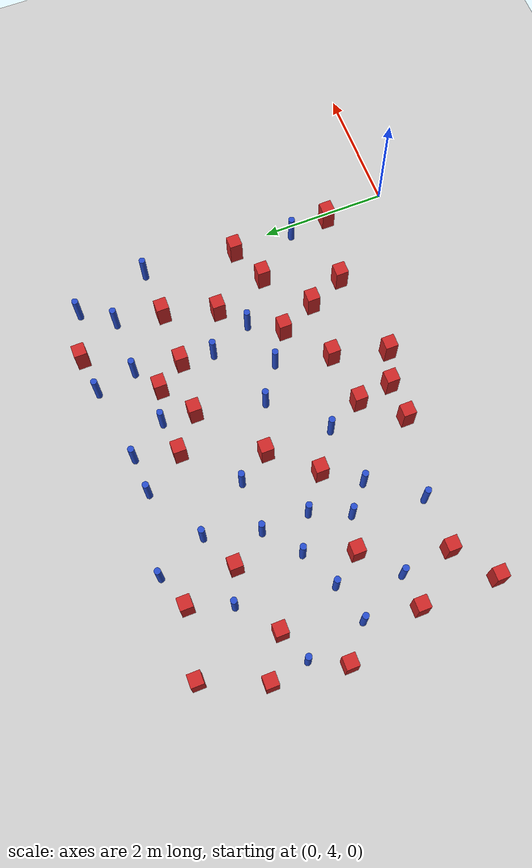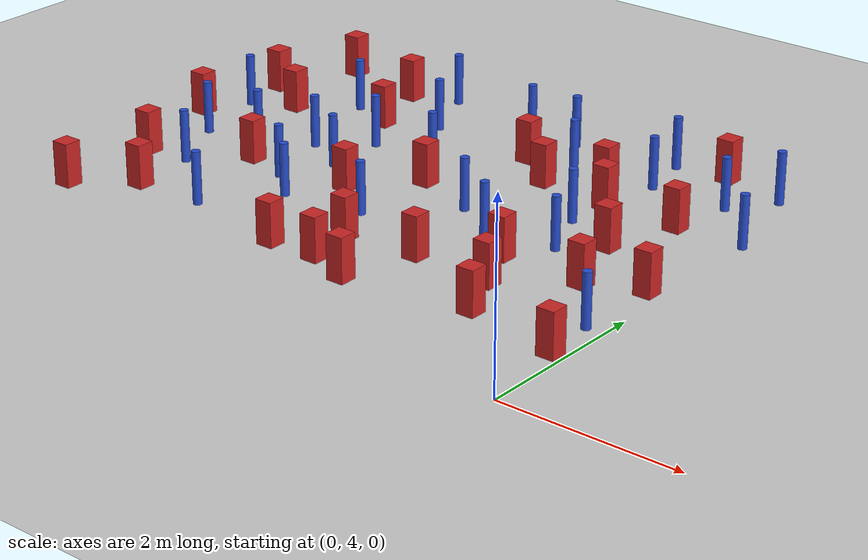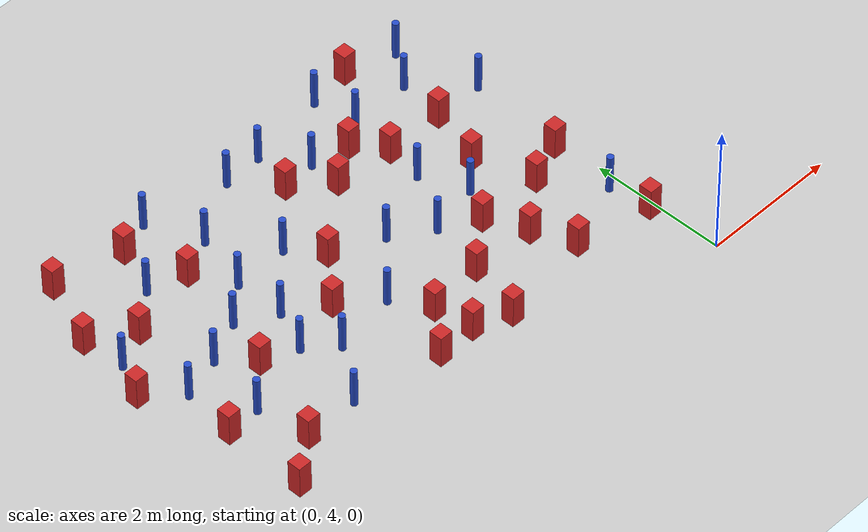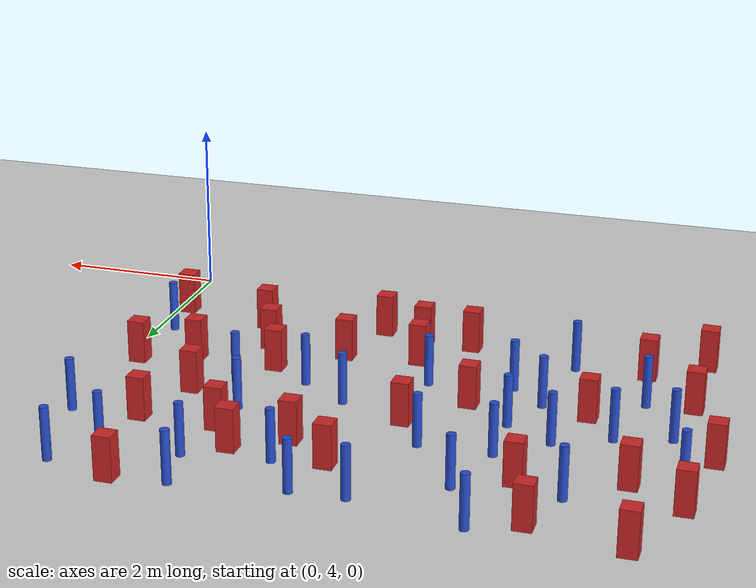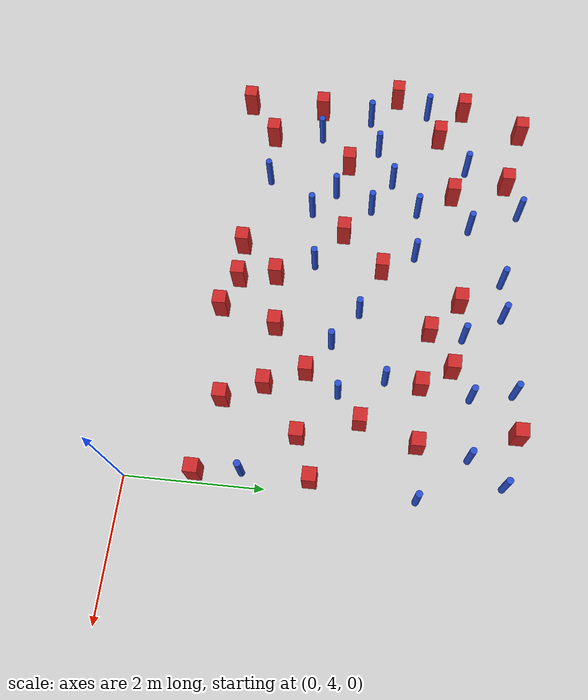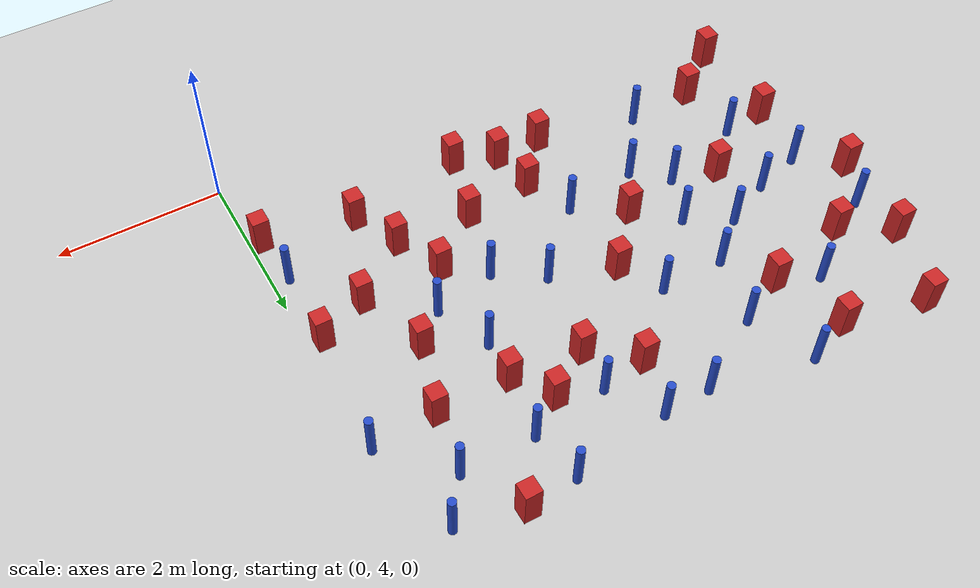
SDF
<sdf version="1.6">
 <world name="default">
  <model name="ground_plane">
   <static>1</static>
   <link name="link">
    <collision name="collision">
     <geometry><plane><normal>0 0 1</normal><size>100 100</size></plane></geometry>
     <surface><friction><ode><mu>100</mu><mu2>50</mu2></ode></friction></surface>
    </collision>
    <visual name="visual">
     <cast_shadows>0</cast_shadows>
     <geometry><plane><normal>0 0 1</normal><size>100 100</size></plane></geometry>
     <material>
      <ambient>1.0 1.0 1.0 1.0</ambient>
      <diffuse>0.8 0.8 0.8 1.0</diffuse>
      <specular>0.01 0.01 0.01 1.000000</specular>
     </material>
    </visual>
   </link>
  </model>
  <model name="pole_obstacle0">
   <static>true</static>
   <pose>-3.84530222846 7.86283528146 7.38925637345e-09 -8.47170692798e-08 1.24976765033e-08 -1.74513093019e-07</pose>
   <link name="link">
    <pose>0 0 0.3 0 -0 0</pose>
    <inertial>
     <mass>1</mass>
     <inertia><ixx>0.145833</ixx><ixy>0</ixy><ixz>0</ixz><iyy>0.145833</iyy><iyz>0</iyz><izz>0.125</izz></inertia>
    </inertial>
    <collision name="collision">
     <geometry><cylinder><radius>0.05</radius><length>.6</length></cylinder></geometry>
    </collision>
    <visual name="visual">
     <geometry><cylinder><radius>0.05</radius><length>.6</length></cylinder></geometry>
     <material>
      <script><name>Gazebo/Blue</name><uri>file://media/materials/scripts/gazebo.material</uri></script>
     </material>
    </visual>
   </link>
  </model>
  <model name="square_post_obstacle2">
   <static>true</static>
   <pose>-5.86951627171 5.40197171694 1.91545236811e-07 -7.35059704564e-06 1.12565212e-07 2.39332434364e-05</pose>
   <link name="link">
    <pose>0 0 0.25 0 -0 0</pose>
    <inertial>
     <mass>100</mass>
     <inertia>
      <ixx>0.166667</ixx>
      <ixy>0</ixy>
      <ixz>0</ixz>
      <iyy>0.166667</iyy>
      <iyz>0</iyz>
      <izz>0.166667</izz>
     </inertia>
    </inertial>
    <collision name="collision"><geometry><box><size>.2 .2 .5</size></box></geometry></collision>
    <visual name="visual">
     <geometry><box><size>.2 .2 .5</size></box></geometry>
     <material>
      <script><name>Gazebo/Red</name><uri>file://media/materials/scripts/gazebo.material</uri></script>
     </material>
    </visual>
   </link>
  </model>
  <model name="square_post_obstacle4">
   <static>true</static>
   <pose>-3.54028163449 7.36782610816 1.91545236811e-07 -7.35059704564e-06 1.12565212e-07 2.39332434364e-05</pose>
   <link name="link">
    <pose>0 0 0.25 0 -0 0</pose>
    <inertial>
     <mass>100</mass>
     <inertia>
      <ixx>0.166667</ixx>
      <ixy>0</ixy>
      <ixz>0</ixz>
      <iyy>0.166667</iyy>
      <iyz>0</iyz>
      <izz>0.166667</izz>
     </inertia>
    </inertial>
    <collision name="collision"><geometry><box><size>.2 .2 .5</size></box></geometry></collision>
    <visual name="visual">
     <geometry><box><size>.2 .2 .5</size></box></geometry>
     <material>
      <script><name>Gazebo/Red</name><uri>file://media/materials/scripts/gazebo.material</uri></script>
     </material>
    </visual>
   </link>
  </model>
  <model name="pole_obstacle4">
   <static>true</static>
   <pose>-6.37288172912 6.97094230461 7.38925637345e-09 -8.47170692796e-08 1.24976764786e-08 -1.74513093032e-07</pose>
   <link name="link">
    <pose>0 0 0.3 0 -0 0</pose>
    <inertial>
     <mass>1</mass>
     <inertia><ixx>0.145833</ixx><ixy>0</ixy><ixz>0</ixz><iyy>0.145833</iyy><iyz>0</iyz><izz>0.125</izz></inertia>
    </inertial>
    <collision name="collision">
     <geometry><cylinder><radius>0.05</radius><length>.6</length></cylinder></geometry>
    </collision>
    <visual name="visual">
     <geometry><cylinder><radius>0.05</radius><length>.6</length></cylinder></geometry>
     <material>
      <script><name>Gazebo/Blue</name><uri>file://media/materials/scripts/gazebo.material</uri></script>
     </material>
    </visual>
   </link>
  </model>
  <model name="pole_obstacle5">
   <static>true</static>
   <pose>-4.64841601133 7.85120983062 7.38925637345e-09 -8.47170692796e-08 1.24976764786e-08 -1.74513093032e-07</pose>
   <link name="link">
    <pose>0 0 0.3 0 -0 0</pose>
    <inertial>
     <mass>1</mass>
     <inertia><ixx>0.145833</ixx><ixy>0</ixy><ixz>0</ixz><iyy>0.145833</iyy><iyz>0</iyz><izz>0.125</izz></inertia>
    </inertial>
    <collision name="collision">
     <geometry><cylinder><radius>0.05</radius><length>.6</length></cylinder></geometry>
    </collision>
    <visual name="visual">
     <geometry><cylinder><radius>0.05</radius><length>.6</length></cylinder></geometry>
     <material>
      <script><name>Gazebo/Blue</name><uri>file://media/materials/scripts/gazebo.material</uri></script>
     </material>
    </visual>
   </link>
  </model>
  <model name="square_post_obstacle12">
   <static>true</static>
   <pose>-0.810957576137 8.06785217845 1.91545236811e-07 -7.35059704564e-06 1.12565212e-07 2.39332434364e-05</pose>
   <link name="link">
    <pose>0 0 0.25 0 -0 0</pose>
    <inertial>
     <mass>100</mass>
     <inertia>
      <ixx>0.166667</ixx>
      <ixy>0</ixy>
      <ixz>0</ixz>
      <iyy>0.166667</iyy>
      <iyz>0</iyz>
      <izz>0.166667</izz>
     </inertia>
    </inertial>
    <collision name="collision"><geometry><box><size>.2 .2 .5</size></box></geometry></collision>
    <visual name="visual">
     <geometry><box><size>.2 .2 .5</size></box></geometry>
     <material>
      <script><name>Gazebo/Red</name><uri>file://media/materials/scripts/gazebo.material</uri></script>
     </material>
    </visual>
   </link>
  </model>
  <model name="square_post_obstacle18">
   <static>true</static>
   <pose>-4.1166179538 6.72472674113 1.91545236811e-07 -7.35059704564e-06 1.12565212e-07 2.39332434364e-05</pose>
   <link name="link">
    <pose>0 0 0.25 0 -0 0</pose>
    <inertial>
     <mass>100</mass>
     <inertia>
      <ixx>0.166667</ixx>
      <ixy>0</ixy>
      <ixz>0</ixz>
      <iyy>0.166667</iyy>
      <iyz>0</iyz>
      <izz>0.166667</izz>
     </inertia>
    </inertial>
    <collision name="collision"><geometry><box><size>.2 .2 .5</size></box></geometry></collision>
    <visual name="visual">
     <geometry><box><size>.2 .2 .5</size></box></geometry>
     <material>
      <script><name>Gazebo/Red</name><uri>file://media/materials/scripts/gazebo.material</uri></script>
     </material>
    </visual>
   </link>
  </model>
  <model name="square_post_obstacle21">
   <static>true</static>
   <pose>-6.49076639367 4.93805852814 1.91545236811e-07 -7.35059704564e-06 1.12565212e-07 2.39332434364e-05</pose>
   <link name="link">
    <pose>0 0 0.25 0 -0 0</pose>
    <inertial>
     <mass>100</mass>
     <inertia>
      <ixx>0.166667</ixx>
      <ixy>0</ixy>
      <ixz>0</ixz>
      <iyy>0.166667</iyy>
      <iyz>0</iyz>
      <izz>0.166667</izz>
     </inertia>
    </inertial>
    <collision name="collision"><geometry><box><size>.2 .2 .5</size></box></geometry></collision>
    <visual name="visual">
     <geometry><box><size>.2 .2 .5</size></box></geometry>
     <material>
      <script><name>Gazebo/Red</name><uri>file://media/materials/scripts/gazebo.material</uri></script>
     </material>
    </visual>
   </link>
  </model>
  <model name="square_post_obstacle22">
   <static>true</static>
   <pose>-3.28676451657 5.75782456899 1.91545236811e-07 -7.35059704564e-06 1.12565212e-07 2.39332434364e-05</pose>
   <link name="link">
    <pose>0 0 0.25 0 -0 0</pose>
    <inertial>
     <mass>100</mass>
     <inertia>
      <ixx>0.166667</ixx>
      <ixy>0</ixy>
      <ixz>0</ixz>
      <iyy>0.166667</iyy>
      <iyz>0</iyz>
      <izz>0.166667</izz>
     </inertia>
    </inertial>
    <collision name="collision"><geometry><box><size>.2 .2 .5</size></box></geometry></collision>
    <visual name="visual">
     <geometry><box><size>.2 .2 .5</size></box></geometry>
     <material>
      <script><name>Gazebo/Red</name><uri>file://media/materials/scripts/gazebo.material</uri></script>
     </material>
    </visual>
   </link>
  </model>
  <model name="pole_obstacle15">
   <static>true</static>
   <pose>-1.73773175886 7.55154261862 7.38925637345e-09 -8.47170692799e-08 1.24976765033e-08 -1.74513093018e-07</pose>
   <link name="link">
    <pose>0 0 0.3 0 -0 0</pose>
    <inertial>
     <mass>1</mass>
     <inertia><ixx>0.145833</ixx><ixy>0</ixy><ixz>0</ixz><iyy>0.145833</iyy><iyz>0</iyz><izz>0.125</izz></inertia>
    </inertial>
    <collision name="collision">
     <geometry><cylinder><radius>0.05</radius><length>.6</length></cylinder></geometry>
    </collision>
    <visual name="visual">
     <geometry><cylinder><radius>0.05</radius><length>.6</length></cylinder></geometry>
     <material>
      <script><name>Gazebo/Blue</name><uri>file://media/materials/scripts/gazebo.material</uri></script>
     </material>
    </visual>
   </link>
  </model>
  <model name="square_post_obstacle24">
   <static>true</static>
   <pose>-6.48630757845 6.14820450195 1.91545236811e-07 -7.35059704564e-06 1.12565212e-07 2.39332434364e-05</pose>
   <link name="link">
    <pose>0 0 0.25 0 -0 0</pose>
    <inertial>
     <mass>100</mass>
     <inertia>
      <ixx>0.166667</ixx>
      <ixy>0</ixy>
      <ixz>0</ixz>
      <iyy>0.166667</iyy>
      <iyz>0</iyz>
      <izz>0.166667</izz>
     </inertia>
    </inertial>
    <collision name="collision"><geometry><box><size>.2 .2 .5</size></box></geometry></collision>
    <visual name="visual">
     <geometry><box><size>.2 .2 .5</size></box></geometry>
     <material>
      <script><name>Gazebo/Red</name><uri>file://media/materials/scripts/gazebo.material</uri></script>
     </material>
    </visual>
   </link>
  </model>
  <model name="pole_obstacle19">
   <static>true</static>
   <pose>-4.74819392775 9.45292990868 7.38925637345e-09 -8.471706928e-08 1.24976765081e-08 -1.74513093015e-07</pose>
   <link name="link">
    <pose>0 0 0.3 0 -0 0</pose>
    <inertial>
     <mass>1</mass>
     <inertia><ixx>0.145833</ixx><ixy>0</ixy><ixz>0</ixz><iyy>0.145833</iyy><iyz>0</iyz><izz>0.125</izz></inertia>
    </inertial>
    <collision name="collision">
     <geometry><cylinder><radius>0.05</radius><length>.6</length></cylinder></geometry>
    </collision>
    <visual name="visual">
     <geometry><cylinder><radius>0.05</radius><length>.6</length></cylinder></geometry>
     <material>
      <script><name>Gazebo/Blue</name><uri>file://media/materials/scripts/gazebo.material</uri></script>
     </material>
    </visual>
   </link>
  </model>
  <model name="square_post_obstacle33">
   <static>true</static>
   <pose>-2.56041614432 8.15220346581 1.91545236811e-07 -7.35059704564e-06 1.12565212e-07 2.39332434364e-05</pose>
   <link name="link">
    <pose>0 0 0.25 0 -0 0</pose>
    <inertial>
     <mass>100</mass>
     <inertia>
      <ixx>0.166667</ixx>
      <ixy>0</ixy>
      <ixz>0</ixz>
      <iyy>0.166667</iyy>
      <iyz>0</iyz>
      <izz>0.166667</izz>
     </inertia>
    </inertial>
    <collision name="collision"><geometry><box><size>.2 .2 .5</size></box></geometry></collision>
    <visual name="visual">
     <geometry><box><size>.2 .2 .5</size></box></geometry>
     <material>
      <script><name>Gazebo/Red</name><uri>file://media/materials/scripts/gazebo.material</uri></script>
     </material>
    </visual>
   </link>
  </model>
  <model name="pole_obstacle29">
   <static>true</static>
   <pose>-5.96796958979 6.1892861334 7.38925637345e-09 -8.47170692796e-08 1.24976764786e-08 -1.74513093032e-07</pose>
   <link name="link">
    <pose>0 0 0.3 0 -0 0</pose>
    <inertial>
     <mass>1</mass>
     <inertia><ixx>0.145833</ixx><ixy>0</ixy><ixz>0</ixz><iyy>0.145833</iyy><iyz>0</iyz><izz>0.125</izz></inertia>
    </inertial>
    <collision name="collision">
     <geometry><cylinder><radius>0.05</radius><length>.6</length></cylinder></geometry>
    </collision>
    <visual name="visual">
     <geometry><cylinder><radius>0.05</radius><length>.6</length></cylinder></geometry>
     <material>
      <script><name>Gazebo/Blue</name><uri>file://media/materials/scripts/gazebo.material</uri></script>
     </material>
    </visual>
   </link>
  </model>
  <model name="pole_obstacle31">
   <static>true</static>
   <pose>-2.78549236481 7.08351522299 7.38925637345e-09 -8.47170692798e-08 1.24976765033e-08 -1.74513093019e-07</pose>
   <link name="link">
    <pose>0 0 0.3 0 -0 0</pose>
    <inertial>
     <mass>1</mass>
     <inertia><ixx>0.145833</ixx><ixy>0</ixy><ixz>0</ixz><iyy>0.145833</iyy><iyz>0</iyz><izz>0.125</izz></inertia>
    </inertial>
    <collision name="collision">
     <geometry><cylinder><radius>0.05</radius><length>.6</length></cylinder></geometry>
    </collision>
    <visual name="visual">
     <geometry><cylinder><radius>0.05</radius><length>.6</length></cylinder></geometry>
     <material>
      <script><name>Gazebo/Blue</name><uri>file://media/materials/scripts/gazebo.material</uri></script>
     </material>
    </visual>
   </link>
  </model>
  <model name="square_post_obstacle38">
   <static>true</static>
   <pose>-6.69083257074 8.4993276623 1.91545236811e-07 -7.35059704564e-06 1.12565212e-07 2.39332434364e-05</pose>
   <link name="link">
    <pose>0 0 0.25 0 -0 0</pose>
    <inertial>
     <mass>100</mass>
     <inertia>
      <ixx>0.166667</ixx>
      <ixy>0</ixy>
      <ixz>0</ixz>
      <iyy>0.166667</iyy>
      <iyz>0</iyz>
      <izz>0.166667</izz>
     </inertia>
    </inertial>
    <collision name="collision"><geometry><box><size>.2 .2 .5</size></box></geometry></collision>
    <visual name="visual">
     <geometry><box><size>.2 .2 .5</size></box></geometry>
     <material>
      <script><name>Gazebo/Red</name><uri>file://media/materials/scripts/gazebo.material</uri></script>
     </material>
    </visual>
   </link>
  </model>
  <model name="pole_obstacle41">
   <static>true</static>
   <pose>-2.23521975514 6.71504837529 7.38925637345e-09 -8.47170692798e-08 1.24976765033e-08 -1.74513093019e-07</pose>
   <link name="link">
    <pose>0 0 0.3 0 -0 0</pose>
    <inertial>
     <mass>1</mass>
     <inertia><ixx>0.145833</ixx><ixy>0</ixy><ixz>0</ixz><iyy>0.145833</iyy><iyz>0</iyz><izz>0.125</izz></inertia>
    </inertial>
    <collision name="collision">
     <geometry><cylinder><radius>0.05</radius><length>.6</length></cylinder></geometry>
    </collision>
    <visual name="visual">
     <geometry><cylinder><radius>0.05</radius><length>.6</length></cylinder></geometry>
     <material>
      <script><name>Gazebo/Blue</name><uri>file://media/materials/scripts/gazebo.material</uri></script>
     </material>
    </visual>
   </link>
  </model>
  <model name="square_post_obstacle42">
   <static>true</static>
   <pose>-5.27645594565 9.24288329275 1.91545236811e-07 -7.35059704564e-06 1.12565212e-07 2.39332434364e-05</pose>
   <link name="link">
    <pose>0 0 0.25 0 -0 0</pose>
    <inertial>
     <mass>100</mass>
     <inertia>
      <ixx>0.166667</ixx>
      <ixy>0</ixy>
      <ixz>0</ixz>
      <iyy>0.166667</iyy>
      <iyz>0</iyz>
      <izz>0.166667</izz>
     </inertia>
    </inertial>
    <collision name="collision"><geometry><box><size>.2 .2 .5</size></box></geometry></collision>
    <visual name="visual">
     <geometry><box><size>.2 .2 .5</size></box></geometry>
     <material>
      <script><name>Gazebo/Red</name><uri>file://media/materials/scripts/gazebo.material</uri></script>
     </material>
    </visual>
   </link>
  </model>
  <model name="square_post_obstacle55">
   <static>true</static>
   <pose>-0.782377569303 6.37517314044 1.91545236811e-07 -7.35059704564e-06 1.12565212e-07 2.39332434364e-05</pose>
   <link name="link">
    <pose>0 0 0.25 0 -0 0</pose>
    <inertial>
     <mass>100</mass>
     <inertia>
      <ixx>0.166667</ixx>
      <ixy>0</ixy>
      <ixz>0</ixz>
      <iyy>0.166667</iyy>
      <iyz>0</iyz>
      <izz>0.166667</izz>
     </inertia>
    </inertial>
    <collision name="collision"><geometry><box><size>.2 .2 .5</size></box></geometry></collision>
    <visual name="visual">
     <geometry><box><size>.2 .2 .5</size></box></geometry>
     <material>
      <script><name>Gazebo/Red</name><uri>file://media/materials/scripts/gazebo.material</uri></script>
     </material>
    </visual>
   </link>
  </model>
  <model name="pole_obstacle53">
   <static>true</static>
   <pose>-3.50167938164 9.21364536039 7.38925637345e-09 -8.47170692793e-08 1.24976764408e-08 -1.74513093041e-07</pose>
   <link name="link">
    <pose>0 0 0.3 0 -0 0</pose>
    <inertial>
     <mass>1</mass>
     <inertia><ixx>0.145833</ixx><ixy>0</ixy><ixz>0</ixz><iyy>0.145833</iyy><iyz>0</iyz><izz>0.125</izz></inertia>
    </inertial>
    <collision name="collision">
     <geometry><cylinder><radius>0.05</radius><length>.6</length></cylinder></geometry>
    </collision>
    <visual name="visual">
     <geometry><cylinder><radius>0.05</radius><length>.6</length></cylinder></geometry>
     <material>
      <script><name>Gazebo/Blue</name><uri>file://media/materials/scripts/gazebo.material</uri></script>
     </material>
    </visual>
   </link>
  </model>
  <model name="square_post_obstacle69">
   <static>true</static>
   <pose>-1.2409759463 5.22952790071 1.91545236811e-07 -7.35059704564e-06 1.12565212e-07 2.39332434364e-05</pose>
   <link name="link">
    <pose>0 0 0.25 0 -0 0</pose>
    <inertial>
     <mass>100</mass>
     <inertia>
      <ixx>0.166667</ixx>
      <ixy>0</ixy>
      <ixz>0</ixz>
      <iyy>0.166667</iyy>
      <iyz>0</iyz>
      <izz>0.166667</izz>
     </inertia>
    </inertial>
    <collision name="collision"><geometry><box><size>.2 .2 .5</size></box></geometry></collision>
    <visual name="visual">
     <geometry><box><size>.2 .2 .5</size></box></geometry>
     <material>
      <script><name>Gazebo/Red</name><uri>file://media/materials/scripts/gazebo.material</uri></script>
     </material>
    </visual>
   </link>
  </model>
  <model name="square_post_obstacle71">
   <static>true</static>
   <pose>-2.43601601629 5.85332780689 1.91545236811e-07 -7.35059704564e-06 1.12565212e-07 2.39332434364e-05</pose>
   <link name="link">
    <pose>0 0 0.25 0 -0 0</pose>
    <inertial>
     <mass>100</mass>
     <inertia>
      <ixx>0.166667</ixx>
      <ixy>0</ixy>
      <ixz>0</ixz>
      <iyy>0.166667</iyy>
      <iyz>0</iyz>
      <izz>0.166667</izz>
     </inertia>
    </inertial>
    <collision name="collision"><geometry><box><size>.2 .2 .5</size></box></geometry></collision>
    <visual name="visual">
     <geometry><box><size>.2 .2 .5</size></box></geometry>
     <material>
      <script><name>Gazebo/Red</name><uri>file://media/materials/scripts/gazebo.material</uri></script>
     </material>
    </visual>
   </link>
  </model>
  <model name="square_post_obstacle73">
   <static>true</static>
   <pose>-1.69556818447 8.0693640155 1.91545236811e-07 -7.35059704564e-06 1.12565212e-07 2.39332434364e-05</pose>
   <link name="link">
    <pose>0 0 0.25 0 -0 0</pose>
    <inertial>
     <mass>100</mass>
     <inertia>
      <ixx>0.166667</ixx>
      <ixy>0</ixy>
      <ixz>0</ixz>
      <iyy>0.166667</iyy>
      <iyz>0</iyz>
      <izz>0.166667</izz>
     </inertia>
    </inertial>
    <collision name="collision"><geometry><box><size>.2 .2 .5</size></box></geometry></collision>
    <visual name="visual">
     <geometry><box><size>.2 .2 .5</size></box></geometry>
     <material>
      <script><name>Gazebo/Red</name><uri>file://media/materials/scripts/gazebo.material</uri></script>
     </material>
    </visual>
   </link>
  </model>
  <model name="pole_obstacle71">
   <static>true</static>
   <pose>-5.51839172261 8.595801762 7.38925637345e-09 -8.471706928e-08 1.24976765081e-08 -1.74513093015e-07</pose>
   <link name="link">
    <pose>0 0 0.3 0 -0 0</pose>
    <inertial>
     <mass>1</mass>
     <inertia><ixx>0.145833</ixx><ixy>0</ixy><ixz>0</ixz><iyy>0.145833</iyy><iyz>0</iyz><izz>0.125</izz></inertia>
    </inertial>
    <collision name="collision">
     <geometry><cylinder><radius>0.05</radius><length>.6</length></cylinder></geometry>
    </collision>
    <visual name="visual">
     <geometry><cylinder><radius>0.05</radius><length>.6</length></cylinder></geometry>
     <material>
      <script><name>Gazebo/Blue</name><uri>file://media/materials/scripts/gazebo.material</uri></script>
     </material>
    </visual>
   </link>
  </model>
  <model name="pole_obstacle73">
   <static>true</static>
   <pose>-6.59857330201 7.90866503283 7.38925637345e-09 -8.47170692796e-08 1.24976764786e-08 -1.74513093032e-07</pose>
   <link name="link">
    <pose>0 0 0.3 0 -0 0</pose>
    <inertial>
     <mass>1</mass>
     <inertia><ixx>0.145833</ixx><ixy>0</ixy><ixz>0</ixz><iyy>0.145833</iyy><iyz>0</iyz><izz>0.125</izz></inertia>
    </inertial>
    <collision name="collision">
     <geometry><cylinder><radius>0.05</radius><length>.6</length></cylinder></geometry>
    </collision>
    <visual name="visual">
     <geometry><cylinder><radius>0.05</radius><length>.6</length></cylinder></geometry>
     <material>
      <script><name>Gazebo/Blue</name><uri>file://media/materials/scripts/gazebo.material</uri></script>
     </material>
    </visual>
   </link>
  </model>
  <model name="pole_obstacle78">
   <static>true</static>
   <pose>-0.329189638573 9.30059741589 7.38925637345e-09 -8.47170692796e-08 1.24976764724e-08 -1.74513093036e-07</pose>
   <link name="link">
    <pose>0 0 0.3 0 -0 0</pose>
    <inertial>
     <mass>1</mass>
     <inertia><ixx>0.145833</ixx><ixy>0</ixy><ixz>0</ixz><iyy>0.145833</iyy><iyz>0</iyz><izz>0.125</izz></inertia>
    </inertial>
    <collision name="collision">
     <geometry><cylinder><radius>0.05</radius><length>.6</length></cylinder></geometry>
    </collision>
    <visual name="visual">
     <geometry><cylinder><radius>0.05</radius><length>.6</length></cylinder></geometry>
     <material>
      <script><name>Gazebo/Blue</name><uri>file://media/materials/scripts/gazebo.material</uri></script>
     </material>
    </visual>
   </link>
  </model>
  <model name="pole_obstacle81">
   <static>true</static>
   <pose>-2.91276702873 9.24191259977 7.38925637345e-09 -8.47170692793e-08 1.24976764408e-08 -1.74513093041e-07</pose>
   <link name="link">
    <pose>0 0 0.3 0 -0 0</pose>
    <inertial>
     <mass>1</mass>
     <inertia><ixx>0.145833</ixx><ixy>0</ixy><ixz>0</ixz><iyy>0.145833</iyy><iyz>0</iyz><izz>0.125</izz></inertia>
    </inertial>
    <collision name="collision">
     <geometry><cylinder><radius>0.05</radius><length>.6</length></cylinder></geometry>
    </collision>
    <visual name="visual">
     <geometry><cylinder><radius>0.05</radius><length>.6</length></cylinder></geometry>
     <material>
      <script><name>Gazebo/Blue</name><uri>file://media/materials/scripts/gazebo.material</uri></script>
     </material>
    </visual>
   </link>
  </model>
  <model name="pole_obstacle87">
   <static>true</static>
   <pose>-0.0305805528529 8.10790653772 7.38925637345e-09 -8.47170692796e-08 1.24976764793e-08 -1.74513093032e-07</pose>
   <link name="link">
    <pose>0 0 0.3 0 -0 0</pose>
    <inertial>
     <mass>1</mass>
     <inertia><ixx>0.145833</ixx><ixy>0</ixy><ixz>0</ixz><iyy>0.145833</iyy><iyz>0</iyz><izz>0.125</izz></inertia>
    </inertial>
    <collision name="collision">
     <geometry><cylinder><radius>0.05</radius><length>.6</length></cylinder></geometry>
    </collision>
    <visual name="visual">
     <geometry><cylinder><radius>0.05</radius><length>.6</length></cylinder></geometry>
     <material>
      <script><name>Gazebo/Blue</name><uri>file://media/materials/scripts/gazebo.material</uri></script>
     </material>
    </visual>
   </link>
  </model>
  <model name="pole_obstacle96">
   <static>true</static>
   <pose>-1.58719316868 8.80147556522 7.38925637345e-09 -8.47170692798e-08 1.24976764881e-08 -1.74513093027e-07</pose>
   <link name="link">
    <pose>0 0 0.3 0 -0 0</pose>
    <inertial>
     <mass>1</mass>
     <inertia><ixx>0.145833</ixx><ixy>0</ixy><ixz>0</ixz><iyy>0.145833</iyy><iyz>0</iyz><izz>0.125</izz></inertia>
    </inertial>
    <collision name="collision">
     <geometry><cylinder><radius>0.05</radius><length>.6</length></cylinder></geometry>
    </collision>
    <visual name="visual">
     <geometry><cylinder><radius>0.05</radius><length>.6</length></cylinder></geometry>
     <material>
      <script><name>Gazebo/Blue</name><uri>file://media/materials/scripts/gazebo.material</uri></script>
     </material>
    </visual>
   </link>
  </model>
  <model name="pole_obstacle99">
   <static>true</static>
   <pose>-4.6324425301 7.11842514019 7.38925637345e-09 -8.47170692796e-08 1.24976764786e-08 -1.74513093032e-07</pose>
   <link name="link">
    <pose>0 0 0.3 0 -0 0</pose>
    <inertial>
     <mass>1</mass>
     <inertia><ixx>0.145833</ixx><ixy>0</ixy><ixz>0</ixz><iyy>0.145833</iyy><iyz>0</iyz><izz>0.125</izz></inertia>
    </inertial>
    <collision name="collision">
     <geometry><cylinder><radius>0.05</radius><length>.6</length></cylinder></geometry>
    </collision>
    <visual name="visual">
     <geometry><cylinder><radius>0.05</radius><length>.6</length></cylinder></geometry>
     <material>
      <script><name>Gazebo/Blue</name><uri>file://media/materials/scripts/gazebo.material</uri></script>
     </material>
    </visual>
   </link>
  </model>
  <model name="square_post_obstacle88">
   <static>true</static>
   <pose>-1.76251075338 6.390519156 1.91545236811e-07 -7.35059704564e-06 1.12565212e-07 2.39332434364e-05</pose>
   <link name="link">
    <pose>0 0 0.25 0 -0 0</pose>
    <inertial>
     <mass>100</mass>
     <inertia>
      <ixx>0.166667</ixx>
      <ixy>0</ixy>
      <ixz>0</ixz>
      <iyy>0.166667</iyy>
      <iyz>0</iyz>
      <izz>0.166667</izz>
     </inertia>
    </inertial>
    <collision name="collision"><geometry><box><size>.2 .2 .5</size></box></geometry></collision>
    <visual name="visual">
     <geometry><box><size>.2 .2 .5</size></box></geometry>
     <material>
      <script><name>Gazebo/Red</name><uri>file://media/materials/scripts/gazebo.material</uri></script>
     </material>
    </visual>
   </link>
  </model>
  <model name="pole_obstacle103">
   <static>true</static>
   <pose>-5.05090897966 5.43289439027 7.38925637345e-09 -8.47170692796e-08 1.24976764786e-08 -1.74513093032e-07</pose>
   <link name="link">
    <pose>0 0 0.3 0 -0 0</pose>
    <inertial>
     <mass>1</mass>
     <inertia><ixx>0.145833</ixx><ixy>0</ixy><ixz>0</ixz><iyy>0.145833</iyy><iyz>0</iyz><izz>0.125</izz></inertia>
    </inertial>
    <collision name="collision">
     <geometry><cylinder><radius>0.05</radius><length>.6</length></cylinder></geometry>
    </collision>
    <visual name="visual">
     <geometry><cylinder><radius>0.05</radius><length>.6</length></cylinder></geometry>
     <material>
      <script><name>Gazebo/Blue</name><uri>file://media/materials/scripts/gazebo.material</uri></script>
     </material>
    </visual>
   </link>
  </model>
  <model name="pole_obstacle106">
   <static>true</static>
   <pose>-5.7697266459 7.14527669295 7.38925637345e-09 -8.47170692796e-08 1.24976764786e-08 -1.74513093032e-07</pose>
   <link name="link">
    <pose>0 0 0.3 0 -0 0</pose>
    <inertial>
     <mass>1</mass>
     <inertia><ixx>0.145833</ixx><ixy>0</ixy><ixz>0</ixz><iyy>0.145833</iyy><iyz>0</iyz><izz>0.125</izz></inertia>
    </inertial>
    <collision name="collision">
     <geometry><cylinder><radius>0.05</radius><length>.6</length></cylinder></geometry>
    </collision>
    <visual name="visual">
     <geometry><cylinder><radius>0.05</radius><length>.6</length></cylinder></geometry>
     <material>
      <script><name>Gazebo/Blue</name><uri>file://media/materials/scripts/gazebo.material</uri></script>
     </material>
    </visual>
   </link>
  </model>
  <model name="square_post_obstacle100">
   <static>true</static>
   <pose>-0.176099455608 6.6235748525 1.91545236811e-07 -7.35059704564e-06 1.12565212e-07 2.39332434364e-05</pose>
   <link name="link">
    <pose>0 0 0.25 0 -0 0</pose>
    <inertial>
     <mass>100</mass>
     <inertia>
      <ixx>0.166667</ixx>
      <ixy>0</ixy>
      <ixz>0</ixz>
      <iyy>0.166667</iyy>
      <iyz>0</iyz>
      <izz>0.166667</izz>
     </inertia>
    </inertial>
    <collision name="collision"><geometry><box><size>.2 .2 .5</size></box></geometry></collision>
    <visual name="visual">
     <geometry><box><size>.2 .2 .5</size></box></geometry>
     <material>
      <script><name>Gazebo/Red</name><uri>file://media/materials/scripts/gazebo.material</uri></script>
     </material>
    </visual>
   </link>
  </model>
  <model name="square_post_obstacle104">
   <static>true</static>
   <pose>-2.67673907284 5.00156798859 1.91545236811e-07 -7.35059704564e-06 1.12565212e-07 2.39332434364e-05</pose>
   <link name="link">
    <pose>0 0 0.25 0 -0 0</pose>
    <inertial>
     <mass>100</mass>
     <inertia>
      <ixx>0.166667</ixx>
      <ixy>0</ixy>
      <ixz>0</ixz>
      <iyy>0.166667</iyy>
      <iyz>0</iyz>
      <izz>0.166667</izz>
     </inertia>
    </inertial>
    <collision name="collision"><geometry><box><size>.2 .2 .5</size></box></geometry></collision>
    <visual name="visual">
     <geometry><box><size>.2 .2 .5</size></box></geometry>
     <material>
      <script><name>Gazebo/Red</name><uri>file://media/materials/scripts/gazebo.material</uri></script>
     </material>
    </visual>
   </link>
  </model>
  <model name="square_post_obstacle109">
   <static>true</static>
   <pose>-3.07903431907 8.57892186862 1.91545236811e-07 -7.35059704564e-06 1.12565212e-07 2.39332434364e-05</pose>
   <link name="link">
    <pose>0 0 0.25 0 -0 0</pose>
    <inertial>
     <mass>100</mass>
     <inertia>
      <ixx>0.166667</ixx>
      <ixy>0</ixy>
      <ixz>0</ixz>
      <iyy>0.166667</iyy>
      <iyz>0</iyz>
      <izz>0.166667</izz>
     </inertia>
    </inertial>
    <collision name="collision"><geometry><box><size>.2 .2 .5</size></box></geometry></collision>
    <visual name="visual">
     <geometry><box><size>.2 .2 .5</size></box></geometry>
     <material>
      <script><name>Gazebo/Red</name><uri>file://media/materials/scripts/gazebo.material</uri></script>
     </material>
    </visual>
   </link>
  </model>
  <model name="square_post_obstacle110">
   <static>true</static>
   <pose>-3.77910960875 5.18120278568 1.91545236811e-07 -7.35059704564e-06 1.12565212e-07 2.39332434364e-05</pose>
   <link name="link">
    <pose>0 0 0.25 0 -0 0</pose>
    <inertial>
     <mass>100</mass>
     <inertia>
      <ixx>0.166667</ixx>
      <ixy>0</ixy>
      <ixz>0</ixz>
      <iyy>0.166667</iyy>
      <iyz>0</iyz>
      <izz>0.166667</izz>
     </inertia>
    </inertial>
    <collision name="collision"><geometry><box><size>.2 .2 .5</size></box></geometry></collision>
    <visual name="visual">
     <geometry><box><size>.2 .2 .5</size></box></geometry>
     <material>
      <script><name>Gazebo/Red</name><uri>file://media/materials/scripts/gazebo.material</uri></script>
     </material>
    </visual>
   </link>
  </model>
  <model name="square_post_obstacle111">
   <static>true</static>
   <pose>-0.13742722161 5.01033505567 1.91545236811e-07 -7.35059704564e-06 1.12565212e-07 2.39332434364e-05</pose>
   <link name="link">
    <pose>0 0 0.25 0 -0 0</pose>
    <inertial>
     <mass>100</mass>
     <inertia>
      <ixx>0.166667</ixx>
      <ixy>0</ixy>
      <ixz>0</ixz>
      <iyy>0.166667</iyy>
      <iyz>0</iyz>
      <izz>0.166667</izz>
     </inertia>
    </inertial>
    <collision name="collision"><geometry><box><size>.2 .2 .5</size></box></geometry></collision>
    <visual name="visual">
     <geometry><box><size>.2 .2 .5</size></box></geometry>
     <material>
      <script><name>Gazebo/Red</name><uri>file://media/materials/scripts/gazebo.material</uri></script>
     </material>
    </visual>
   </link>
  </model>
  <model name="square_post_obstacle128">
   <static>true</static>
   <pose>-5.42401964864 6.68674169496 1.91545236811e-07 -7.35059704564e-06 1.12565212e-07 2.39332434364e-05</pose>
   <link name="link">
    <pose>0 0 0.25 0 -0 0</pose>
    <inertial>
     <mass>100</mass>
     <inertia>
      <ixx>0.166667</ixx>
      <ixy>0</ixy>
      <ixz>0</ixz>
      <iyy>0.166667</iyy>
      <iyz>0</iyz>
      <izz>0.166667</izz>
     </inertia>
    </inertial>
    <collision name="collision"><geometry><box><size>.2 .2 .5</size></box></geometry></collision>
    <visual name="visual">
     <geometry><box><size>.2 .2 .5</size></box></geometry>
     <material>
      <script><name>Gazebo/Red</name><uri>file://media/materials/scripts/gazebo.material</uri></script>
     </material>
    </visual>
   </link>
  </model>
  <model name="pole_obstacle156">
   <static>true</static>
   <pose>-5.16522053167 7.41918649658 7.38925637345e-09 -8.47170692796e-08 1.24976764786e-08 -1.74513093032e-07</pose>
   <link name="link">
    <pose>0 0 0.3 0 -0 0</pose>
    <inertial>
     <mass>1</mass>
     <inertia><ixx>0.145833</ixx><ixy>0</ixy><ixz>0</ixz><iyy>0.145833</iyy><iyz>0</iyz><izz>0.125</izz></inertia>
    </inertial>
    <collision name="collision">
     <geometry><cylinder><radius>0.05</radius><length>.6</length></cylinder></geometry>
    </collision>
    <visual name="visual">
     <geometry><cylinder><radius>0.05</radius><length>.6</length></cylinder></geometry>
     <material>
      <script><name>Gazebo/Blue</name><uri>file://media/materials/scripts/gazebo.material</uri></script>
     </material>
    </visual>
   </link>
  </model>
  <model name="square_post_obstacle149">
   <static>true</static>
   <pose>-1.49987862637 5.81261585436 1.91545236811e-07 -7.35059704564e-06 1.12565212e-07 2.39332434364e-05</pose>
   <link name="link">
    <pose>0 0 0.25 0 -0 0</pose>
    <inertial>
     <mass>100</mass>
     <inertia>
      <ixx>0.166667</ixx>
      <ixy>0</ixy>
      <ixz>0</ixz>
      <iyy>0.166667</iyy>
      <iyz>0</iyz>
      <izz>0.166667</izz>
     </inertia>
    </inertial>
    <collision name="collision"><geometry><box><size>.2 .2 .5</size></box></geometry></collision>
    <visual name="visual">
     <geometry><box><size>.2 .2 .5</size></box></geometry>
     <material>
      <script><name>Gazebo/Red</name><uri>file://media/materials/scripts/gazebo.material</uri></script>
     </material>
    </visual>
   </link>
  </model>
  <model name="square_post_obstacle151">
   <static>true</static>
   <pose>-6.85184058772 7.38518537488 1.91545236811e-07 -7.35059704564e-06 1.12565212e-07 2.39332434364e-05</pose>
   <link name="link">
    <pose>0 0 0.25 0 -0 0</pose>
    <inertial>
     <mass>100</mass>
     <inertia>
      <ixx>0.166667</ixx>
      <ixy>0</ixy>
      <ixz>0</ixz>
      <iyy>0.166667</iyy>
      <iyz>0</iyz>
      <izz>0.166667</izz>
     </inertia>
    </inertial>
    <collision name="collision"><geometry><box><size>.2 .2 .5</size></box></geometry></collision>
    <visual name="visual">
     <geometry><box><size>.2 .2 .5</size></box></geometry>
     <material>
      <script><name>Gazebo/Red</name><uri>file://media/materials/scripts/gazebo.material</uri></script>
     </material>
    </visual>
   </link>
  </model>
  <model name="square_post_obstacle160">
   <static>true</static>
   <pose>-2.00251943329 8.51419943873 1.91545236811e-07 -7.35059704564e-06 1.12565212e-07 2.39332434364e-05</pose>
   <link name="link">
    <pose>0 0 0.25 0 -0 0</pose>
    <inertial>
     <mass>100</mass>
     <inertia>
      <ixx>0.166667</ixx>
      <ixy>0</ixy>
      <ixz>0</ixz>
      <iyy>0.166667</iyy>
      <iyz>0</iyz>
      <izz>0.166667</izz>
     </inertia>
    </inertial>
    <collision name="collision"><geometry><box><size>.2 .2 .5</size></box></geometry></collision>
    <visual name="visual">
     <geometry><box><size>.2 .2 .5</size></box></geometry>
     <material>
      <script><name>Gazebo/Red</name><uri>file://media/materials/scripts/gazebo.material</uri></script>
     </material>
    </visual>
   </link>
  </model>
  <model name="pole_obstacle175">
   <static>true</static>
   <pose>-1.70531890012 9.42717577698 7.38925637345e-09 -8.47170692798e-08 1.24976764881e-08 -1.74513093027e-07</pose>
   <link name="link">
    <pose>0 0 0.3 0 -0 0</pose>
    <inertial>
     <mass>1</mass>
     <inertia><ixx>0.145833</ixx><ixy>0</ixy><ixz>0</ixz><iyy>0.145833</iyy><iyz>0</iyz><izz>0.125</izz></inertia>
    </inertial>
    <collision name="collision">
     <geometry><cylinder><radius>0.05</radius><length>.6</length></cylinder></geometry>
    </collision>
    <visual name="visual">
     <geometry><cylinder><radius>0.05</radius><length>.6</length></cylinder></geometry>
     <material>
      <script><name>Gazebo/Blue</name><uri>file://media/materials/scripts/gazebo.material</uri></script>
     </material>
    </visual>
   </link>
  </model>
  <model name="square_post_obstacle172">
   <static>true</static>
   <pose>-6.30472872349 9.44952990296 1.91545236811e-07 -7.35059704564e-06 1.12565212e-07 2.39332434364e-05</pose>
   <link name="link">
    <pose>0 0 0.25 0 -0 0</pose>
    <inertial>
     <mass>100</mass>
     <inertia>
      <ixx>0.166667</ixx>
      <ixy>0</ixy>
      <ixz>0</ixz>
      <iyy>0.166667</iyy>
      <iyz>0</iyz>
      <izz>0.166667</izz>
     </inertia>
    </inertial>
    <collision name="collision"><geometry><box><size>.2 .2 .5</size></box></geometry></collision>
    <visual name="visual">
     <geometry><box><size>.2 .2 .5</size></box></geometry>
     <material>
      <script><name>Gazebo/Red</name><uri>file://media/materials/scripts/gazebo.material</uri></script>
     </material>
    </visual>
   </link>
  </model>
  <model name="pole_obstacle187">
   <static>true</static>
   <pose>-0.687278248434 8.8059686275 7.38925637345e-09 -8.47170692797e-08 1.249767648e-08 -1.74513093032e-07</pose>
   <link name="link">
    <pose>0 0 0.3 0 -0 0</pose>
    <inertial>
     <mass>1</mass>
     <inertia><ixx>0.145833</ixx><ixy>0</ixy><ixz>0</ixz><iyy>0.145833</iyy><iyz>0</iyz><izz>0.125</izz></inertia>
    </inertial>
    <collision name="collision">
     <geometry><cylinder><radius>0.05</radius><length>.6</length></cylinder></geometry>
    </collision>
    <visual name="visual">
     <geometry><cylinder><radius>0.05</radius><length>.6</length></cylinder></geometry>
     <material>
      <script><name>Gazebo/Blue</name><uri>file://media/materials/scripts/gazebo.material</uri></script>
     </material>
    </visual>
   </link>
  </model>
  <model name="square_post_obstacle179">
   <static>true</static>
   <pose>-6.09206997948 8.12366543372 1.91545236811e-07 -7.35059704564e-06 1.12565212e-07 2.39332434364e-05</pose>
   <link name="link">
    <pose>0 0 0.25 0 -0 0</pose>
    <inertial>
     <mass>100</mass>
     <inertia>
      <ixx>0.166667</ixx>
      <ixy>0</ixy>
      <ixz>0</ixz>
      <iyy>0.166667</iyy>
      <iyz>0</iyz>
      <izz>0.166667</izz>
     </inertia>
    </inertial>
    <collision name="collision"><geometry><box><size>.2 .2 .5</size></box></geometry></collision>
    <visual name="visual">
     <geometry><box><size>.2 .2 .5</size></box></geometry>
     <material>
      <script><name>Gazebo/Red</name><uri>file://media/materials/scripts/gazebo.material</uri></script>
     </material>
    </visual>
   </link>
  </model>
  <model name="square_post_obstacle185">
   <static>true</static>
   <pose>-4.99446608716 8.39344536503 1.91545236811e-07 -7.35059704564e-06 1.12565212e-07 2.39332434364e-05</pose>
   <link name="link">
    <pose>0 0 0.25 0 -0 0</pose>
    <inertial>
     <mass>100</mass>
     <inertia>
      <ixx>0.166667</ixx>
      <ixy>0</ixy>
      <ixz>0</ixz>
      <iyy>0.166667</iyy>
      <iyz>0</iyz>
      <izz>0.166667</izz>
     </inertia>
    </inertial>
    <collision name="collision"><geometry><box><size>.2 .2 .5</size></box></geometry></collision>
    <visual name="visual">
     <geometry><box><size>.2 .2 .5</size></box></geometry>
     <material>
      <script><name>Gazebo/Red</name><uri>file://media/materials/scripts/gazebo.material</uri></script>
     </material>
    </visual>
   </link>
  </model>
  <model name="square_post_obstacle186">
   <static>true</static>
   <pose>-1.0771018034 7.23674421036 1.91545236811e-07 -7.35059704564e-06 1.12565212e-07 2.39332434364e-05</pose>
   <link name="link">
    <pose>0 0 0.25 0 -0 0</pose>
    <inertial>
     <mass>100</mass>
     <inertia>
      <ixx>0.166667</ixx>
      <ixy>0</ixy>
      <ixz>0</ixz>
      <iyy>0.166667</iyy>
      <iyz>0</iyz>
      <izz>0.166667</izz>
     </inertia>
    </inertial>
    <collision name="collision"><geometry><box><size>.2 .2 .5</size></box></geometry></collision>
    <visual name="visual">
     <geometry><box><size>.2 .2 .5</size></box></geometry>
     <material>
      <script><name>Gazebo/Red</name><uri>file://media/materials/scripts/gazebo.material</uri></script>
     </material>
    </visual>
   </link>
  </model>
  <model name="square_post_obstacle190">
   <static>true</static>
   <pose>-3.19561535346 5.1966250694 1.91545236811e-07 -7.35059704564e-06 1.12565212e-07 2.39332434364e-05</pose>
   <link name="link">
    <pose>0 0 0.25 0 -0 0</pose>
    <inertial>
     <mass>100</mass>
     <inertia>
      <ixx>0.166667</ixx>
      <ixy>0</ixy>
      <ixz>0</ixz>
      <iyy>0.166667</iyy>
      <iyz>0</iyz>
      <izz>0.166667</izz>
     </inertia>
    </inertial>
    <collision name="collision"><geometry><box><size>.2 .2 .5</size></box></geometry></collision>
    <visual name="visual">
     <geometry><box><size>.2 .2 .5</size></box></geometry>
     <material>
      <script><name>Gazebo/Red</name><uri>file://media/materials/scripts/gazebo.material</uri></script>
     </material>
    </visual>
   </link>
  </model>
  <model name="square_post_obstacle199">
   <static>true</static>
   <pose>-1.08366103435 9.48854964407 1.91545236811e-07 -7.35059704564e-06 1.12565212e-07 2.39332434364e-05</pose>
   <link name="link">
    <pose>0 0 0.25 0 -0 0</pose>
    <inertial>
     <mass>100</mass>
     <inertia>
      <ixx>0.166667</ixx>
      <ixy>0</ixy>
      <ixz>0</ixz>
      <iyy>0.166667</iyy>
      <iyz>0</iyz>
      <izz>0.166667</izz>
     </inertia>
    </inertial>
    <collision name="collision"><geometry><box><size>.2 .2 .5</size></box></geometry></collision>
    <visual name="visual">
     <geometry><box><size>.2 .2 .5</size></box></geometry>
     <material>
      <script><name>Gazebo/Red</name><uri>file://media/materials/scripts/gazebo.material</uri></script>
     </material>
    </visual>
   </link>
  </model>
  <model name="pole_obstacle198">
   <static>true</static>
   <pose>-4.41403643619 8.68377982768 7.38925637345e-09 -8.471706928e-08 1.24976765081e-08 -1.74513093015e-07</pose>
   <link name="link">
    <pose>0 0 0.3 0 -0 0</pose>
    <inertial>
     <mass>1</mass>
     <inertia><ixx>0.145833</ixx><ixy>0</ixy><ixz>0</ixz><iyy>0.145833</iyy><iyz>0</iyz><izz>0.125</izz></inertia>
    </inertial>
    <collision name="collision">
     <geometry><cylinder><radius>0.05</radius><length>.6</length></cylinder></geometry>
    </collision>
    <visual name="visual">
     <geometry><cylinder><radius>0.05</radius><length>.6</length></cylinder></geometry>
     <material>
      <script><name>Gazebo/Blue</name><uri>file://media/materials/scripts/gazebo.material</uri></script>
     </material>
    </visual>
   </link>
  </model>
  <model name="pole_obstacle201">
   <static>true</static>
   <pose>-1.46380187614 6.88541136004 7.38925637345e-09 -8.47170692799e-08 1.24976765033e-08 -1.74513093018e-07</pose>
   <link name="link">
    <pose>0 0 0.3 0 -0 0</pose>
    <inertial>
     <mass>1</mass>
     <inertia><ixx>0.145833</ixx><ixy>0</ixy><ixz>0</ixz><iyy>0.145833</iyy><iyz>0</iyz><izz>0.125</izz></inertia>
    </inertial>
    <collision name="collision">
     <geometry><cylinder><radius>0.05</radius><length>.6</length></cylinder></geometry>
    </collision>
    <visual name="visual">
     <geometry><cylinder><radius>0.05</radius><length>.6</length></cylinder></geometry>
     <material>
      <script><name>Gazebo/Blue</name><uri>file://media/materials/scripts/gazebo.material</uri></script>
     </material>
    </visual>
   </link>
  </model>
  <model name="pole_obstacle217">
   <static>true</static>
   <pose>-0.19770927021 5.64903994149 7.38925637345e-09 -8.47170692799e-08 1.24976765068e-08 -1.74513093018e-07</pose>
   <link name="link">
    <pose>0 0 0.3 0 -0 0</pose>
    <inertial>
     <mass>1</mass>
     <inertia><ixx>0.145833</ixx><ixy>0</ixy><ixz>0</ixz><iyy>0.145833</iyy><iyz>0</iyz><izz>0.125</izz></inertia>
    </inertial>
    <collision name="collision">
     <geometry><cylinder><radius>0.05</radius><length>.6</length></cylinder></geometry>
    </collision>
    <visual name="visual">
     <geometry><cylinder><radius>0.05</radius><length>.6</length></cylinder></geometry>
     <material>
      <script><name>Gazebo/Blue</name><uri>file://media/materials/scripts/gazebo.material</uri></script>
     </material>
    </visual>
   </link>
  </model>
  <model name="pole_obstacle221">
   <static>true</static>
   <pose>-3.55366601736 6.32169425585 7.38925637345e-09 -8.47170692798e-08 1.24976765033e-08 -1.74513093019e-07</pose>
   <link name="link">
    <pose>0 0 0.3 0 -0 0</pose>
    <inertial>
     <mass>1</mass>
     <inertia><ixx>0.145833</ixx><ixy>0</ixy><ixz>0</ixz><iyy>0.145833</iyy><iyz>0</iyz><izz>0.125</izz></inertia>
    </inertial>
    <collision name="collision">
     <geometry><cylinder><radius>0.05</radius><length>.6</length></cylinder></geometry>
    </collision>
    <visual name="visual">
     <geometry><cylinder><radius>0.05</radius><length>.6</length></cylinder></geometry>
     <material>
      <script><name>Gazebo/Blue</name><uri>file://media/materials/scripts/gazebo.material</uri></script>
     </material>
    </visual>
   </link>
  </model>
  <model name="pole_obstacle240">
   <static>true</static>
   <pose>-4.49442999043 6.18053002078 7.38925637345e-09 -8.47170692796e-08 1.24976764786e-08 -1.74513093032e-07</pose>
   <link name="link">
    <pose>0 0 0.3 0 -0 0</pose>
    <inertial>
     <mass>1</mass>
     <inertia><ixx>0.145833</ixx><ixy>0</ixy><ixz>0</ixz><iyy>0.145833</iyy><iyz>0</iyz><izz>0.125</izz></inertia>
    </inertial>
    <collision name="collision">
     <geometry><cylinder><radius>0.05</radius><length>.6</length></cylinder></geometry>
    </collision>
    <visual name="visual">
     <geometry><cylinder><radius>0.05</radius><length>.6</length></cylinder></geometry>
     <material>
      <script><name>Gazebo/Blue</name><uri>file://media/materials/scripts/gazebo.material</uri></script>
     </material>
    </visual>
   </link>
  </model>
  <model name="pole_obstacle242">
   <static>true</static>
   <pose>-4.88780999043 6.52744002078 7.38925637345e-09 -8.47170692796e-08 1.24976764786e-08 -1.74513093032e-07</pose>
   <link name="link">
    <pose>0 0 0.3 0 -0 0</pose>
    <inertial>
     <mass>1</mass>
     <inertia><ixx>0.145833</ixx><ixy>0</ixy><ixz>0</ixz><iyy>0.145833</iyy><iyz>0</iyz><izz>0.125</izz></inertia>
    </inertial>
    <collision name="collision">
     <geometry><cylinder><radius>0.05</radius><length>.6</length></cylinder></geometry>
    </collision>
    <visual name="visual">
     <geometry><cylinder><radius>0.05</radius><length>.6</length></cylinder></geometry>
     <material>
      <script><name>Gazebo/Blue</name><uri>file://media/materials/scripts/gazebo.material</uri></script>
     </material>
    </visual>
   </link>
  </model>
  <model name="pole_obstacle244">
   <static>true</static>
   <pose>-2.52504999043 8.66164002078 7.38925637345e-09 -8.47170692799e-08 1.24976765012e-08 -1.74513093021e-07</pose>
   <link name="link">
    <pose>0 0 0.3 0 -0 0</pose>
    <inertial>
     <mass>1</mass>
     <inertia><ixx>0.145833</ixx><ixy>0</ixy><ixz>0</ixz><iyy>0.145833</iyy><iyz>0</iyz><izz>0.125</izz></inertia>
    </inertial>
    <collision name="collision">
     <geometry><cylinder><radius>0.05</radius><length>.6</length></cylinder></geometry>
    </collision>
    <visual name="visual">
     <geometry><cylinder><radius>0.05</radius><length>.6</length></cylinder></geometry>
     <material>
      <script><name>Gazebo/Blue</name><uri>file://media/materials/scripts/gazebo.material</uri></script>
     </material>
    </visual>
   </link>
  </model>
 </world>
</sdf>
